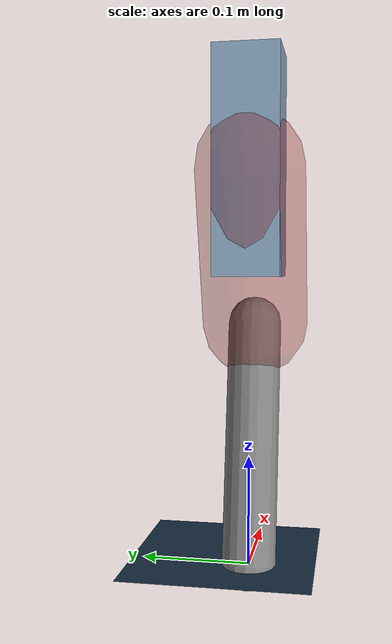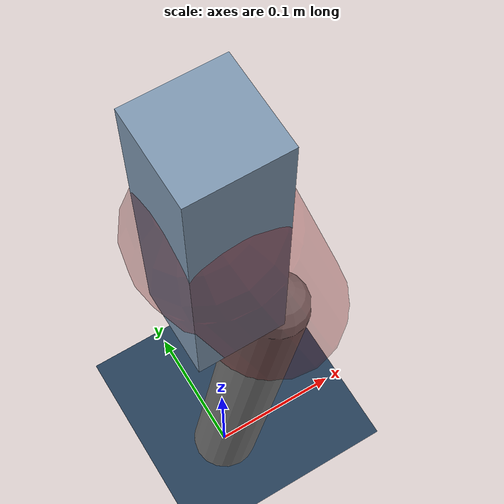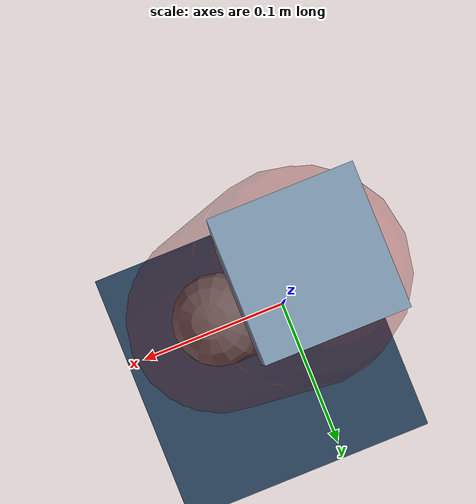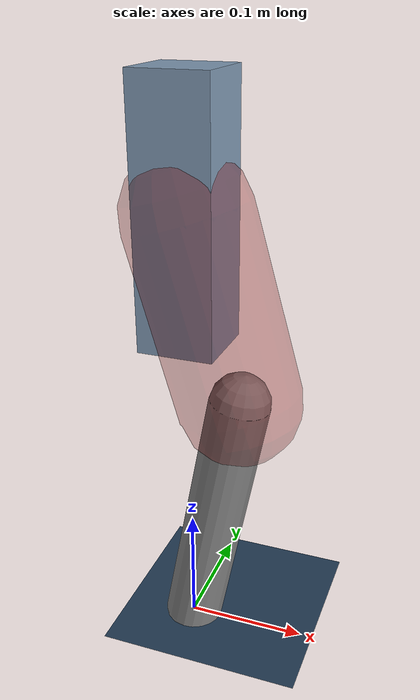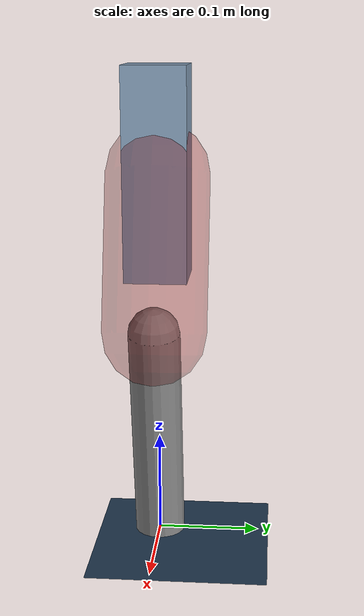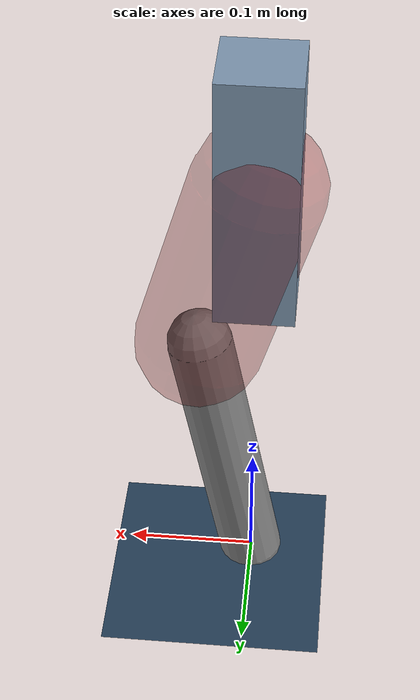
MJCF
<mujoco model="Hopper2D">
	<compiler inertiafromgeom="true" angle="radian" />
	<option timestep="0.001" integrator="implicit" cone="elliptic" solver="Newton" tolerance="1e-10" />

	<default>
		<geom contype="1" conaffinity="1" condim="3" friction="2 0.005 0.0001" solref="0.005 1" />
		<joint limited="true" damping="0.1" />
	</default>

	<asset>
		<texture name="skybox" type="skybox" builtin="gradient" rgb1=".4 .6 .8" rgb2="0 0 0" width="800" height="800" />
		<texture name="grid" type="2d" builtin="checker" rgb1=".1 .2 .3" rgb2=".2 .3 .4" width="300" height="300" mark="edge" markrgb=".2 .3 .4" />
		<material name="ground" texture="grid" texrepeat="1 1" texuniform="true" reflectance="0.1" />
		<material name="leg" rgba="0.5 0.6 0.7 1" />
	</asset>

	<worldbody>

		<geom name="floor" type="plane" size="5 5 0.25" material="ground" />

		<light directional="false" diffuse="0.8 0.8 0.8" specular="0.3 0.3 0.3" pos="0 0 2" dir="0 0 -1" />
		<light mode="targetbodycom" target="base" directional="false" diffuse="0.8 0.8 0.8" specular="0.3 0.3 0.3" pos="0 0 2" dir="0 0 -1" />

		<camera name="fixed" pos="0 -2 1" xyaxes="1 0 0 0 0 1" />
		<camera name="tracking" mode="trackcom" pos="0 -3 1" />

		<body name="root" pos="0 0 0.365093132761811">
			<joint name="slide_x" type="slide" axis="1 0 0" range="-100 100" />
			<joint name="slide_z" type="slide" axis="0 0 1" range="0 10" />

			<body name="base" pos="0 0 0">
				<geom name="torso" type="box" size="0.03 0.03 0.1" mass="2.827" material="leg" />

				<body name="link1" pos="0 0 0" euler="0 1.2874544892240127 0">
					<joint type="hinge" axis="0 -1 0" pos="0 0 0" name="hinge1" limited="true" range="-3.14 3.14" stiffness="0" damping="0.1" />
					<geom name="thigh" type="capsule" fromto="0 0 0 0.150704559829204 0 0" size="0.05" rgba="0.5 0 0 0.3" mass="0.6101909435900896" />

					<body name="link2" pos="0.150704559829204 0 0" euler="0 0.47222583310726757 0">
						<joint type="hinge" axis="0 -1 0" pos="0 0 0" name="hinge2" limited="true" range="-3.14 3.14" stiffness="0" damping="0.1" />
						<geom name="shank" type="capsule" fromto="0 0 0 0.22438857293260697 0 0" size="0.025" mass="0.42131085834608556" />

					</body>
				</body>
			</body>
		</body>
	</worldbody>

	<actuator>
		<motor name="torque1" joint="hinge1" ctrlrange="-40.581498378557 40.581498378557" ctrllimited="true" gear="1" />
		<motor name="torque2" joint="hinge2" ctrlrange="-75.82455025690145 75.82455025690145" ctrllimited="true" gear="1" />
	</actuator>
</mujoco>
